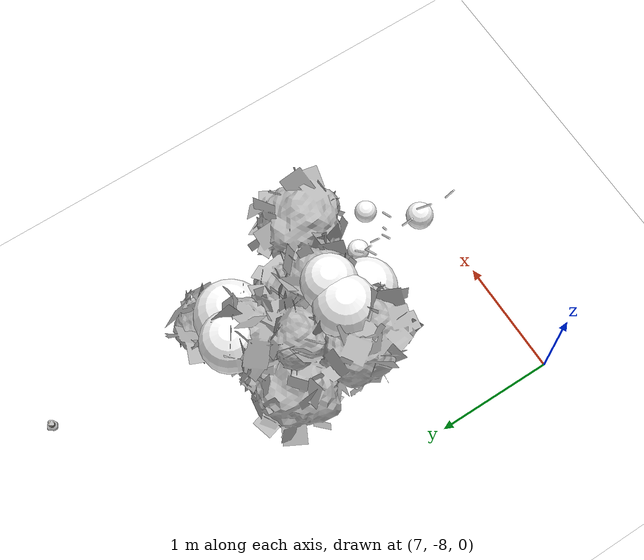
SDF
<sdf version="1.11">
 <world name="peach_orchard">
  <model name="ground">
   <static>true</static>
   <link name="link">
    <visual name="soil">
     <geometry><plane><normal>0 0 1</normal><size>32 22</size></plane></geometry>
     <material>
      <ambient>1 1 1 1</ambient>
      <diffuse>1 1 1 1</diffuse>
      <specular>0.1 0.1 0.1 1</specular>
      <pbr>
       <metal>
        <albedo_map>textures/soil_albedo.png</albedo_map>
        <normal_map type="tangent">textures/soil_normal.png</normal_map>
        <roughness>0.95</roughness>
        <metalness>0</metalness>
       </metal>
      </pbr>
     </material>
    </visual>
    <collision name="c_soil">
     <geometry><plane><normal>0 0 1</normal><size>32 22</size></plane></geometry>
    </collision>
   </link>
  </model>
  <model name="tree_r4_t0">
   <pose>8 -6.6 0 0 0 0</pose>
   <static>true</static>
   <link name="link">
    <visual name="tree_mesh">
     <pose>0 0 0 0 0 0.129066</pose>
     <geometry>
      <mesh><uri>model://peach_sim/meshes/peach_tree_a.glb</uri><scale>1.04317 1.04317 1.04317</scale></mesh>
     </geometry>
    </visual>
    <visual name="trunk_0">
     <pose>0 0 0.160191 0 0 0</pose>
     <geometry><cylinder><radius>0.056174</radius><length>0.320383</length></cylinder></geometry>
     <material>
      <ambient>1 1 1 1</ambient>
      <diffuse>1 1 1 1</diffuse>
      <specular>0.1 0.1 0.1 1</specular>
      <pbr>
       <metal>
        <albedo_map>textures/bark_albedo.png</albedo_map>
        <normal_map type="tangent">textures/bark_normal.png</normal_map>
        <roughness>0.9</roughness>
        <metalness>0</metalness>
       </metal>
      </pbr>
     </material>
    </visual>
    <collision name="c_trunk_0">
     <pose>0 0 0.160191 0 0 0</pose>
     <geometry><cylinder><radius>0.056174</radius><length>0.320383</length></cylinder></geometry>
    </collision>
    <visual name="trunk_1">
     <pose>0 0 0.451449 0 0 0</pose>
     <geometry><cylinder><radius>0.0404453</radius><length>0.262132</length></cylinder></geometry>
     <material>
      <ambient>1 1 1 1</ambient>
      <diffuse>1 1 1 1</diffuse>
      <specular>0.1 0.1 0.1 1</specular>
      <pbr>
       <metal>
        <albedo_map>textures/bark_albedo.png</albedo_map>
        <normal_map type="tangent">textures/bark_normal.png</normal_map>
        <roughness>0.9</roughness>
        <metalness>0</metalness>
       </metal>
      </pbr>
     </material>
    </visual>
    <collision name="c_trunk_1">
     <pose>0 0 0.451449 0 0 0</pose>
     <geometry><cylinder><radius>0.0404453</radius><length>0.262132</length></cylinder></geometry>
    </collision>
    <visual name="root_flare">
     <pose>0 0 0.035 0 0 0</pose>
     <geometry><cylinder><radius>0.0814523</radius><length>0.07</length></cylinder></geometry>
     <material>
      <ambient>1 1 1 1</ambient>
      <diffuse>1 1 1 1</diffuse>
      <specular>0.1 0.1 0.1 1</specular>
      <pbr>
       <metal>
        <albedo_map>textures/bark_albedo.png</albedo_map>
        <normal_map type="tangent">textures/bark_normal.png</normal_map>
        <roughness>0.95</roughness>
        <metalness>0</metalness>
       </metal>
      </pbr>
     </material>
    </visual>
    <visual name="scaffold_0">
     <pose>-0.11892 0.309211 0.842624 0 0.823906 1.93795</pose>
     <geometry><cylinder><radius>0.022</radius><length>0.902938</length></cylinder></geometry>
     <material>
      <ambient>1 1 1 1</ambient>
      <diffuse>1 1 1 1</diffuse>
      <specular>0.1 0.1 0.1 1</specular>
      <pbr>
       <metal>
        <albedo_map>textures/bark_albedo.png</albedo_map>
        <normal_map type="tangent">textures/bark_normal.png</normal_map>
        <roughness>0.9</roughness>
        <metalness>0</metalness>
       </metal>
      </pbr>
     </material>
    </visual>
    <collision name="c_scaffold_0">
     <pose>-0.11892 0.309211 0.842624 0 0.823906 1.93795</pose>
     <geometry><cylinder><radius>0.022</radius><length>0.902938</length></cylinder></geometry>
    </collision>
    <visual name="branchlet_0_0">
     <pose>-0.240636 0.437802 1.12912 0 0.696109 -2.21086</pose>
     <geometry><cylinder><radius>0.012</radius><length>0.248842</length></cylinder></geometry>
     <material>
      <ambient>1 1 1 1</ambient>
      <diffuse>1 1 1 1</diffuse>
      <specular>0.1 0.1 0.1 1</specular>
      <pbr>
       <metal>
        <albedo_map>textures/bark_albedo.png</albedo_map>
        <normal_map type="tangent">textures/bark_normal.png</normal_map>
        <roughness>0.9</roughness>
        <metalness>0</metalness>
       </metal>
      </pbr>
     </material>
    </visual>
    <visual name="branchlet_0_1">
     <pose>-0.102066 0.313433 0.935337 0 0.187561 0.862831</pose>
     <geometry><cylinder><radius>0.012</radius><length>0.210288</length></cylinder></geometry>
     <material>
      <ambient>1 1 1 1</ambient>
      <diffuse>1 1 1 1</diffuse>
      <specular>0.1 0.1 0.1 1</specular>
      <pbr>
       <metal>
        <albedo_map>textures/bark_albedo.png</albedo_map>
        <normal_map type="tangent">textures/bark_normal.png</normal_map>
        <roughness>0.9</roughness>
        <metalness>0</metalness>
       </metal>
      </pbr>
     </material>
    </visual>
    <visual name="branchlet_0_2">
     <pose>-0.339567 0.417087 1.00311 0 1.63695 -2.74199</pose>
     <geometry><cylinder><radius>0.012</radius><length>0.335347</length></cylinder></geometry>
     <material>
      <ambient>1 1 1 1</ambient>
      <diffuse>1 1 1 1</diffuse>
      <specular>0.1 0.1 0.1 1</specular>
      <pbr>
       <metal>
        <albedo_map>textures/bark_albedo.png</albedo_map>
        <normal_map type="tangent">textures/bark_normal.png</normal_map>
        <roughness>0.9</roughness>
        <metalness>0</metalness>
       </metal>
      </pbr>
     </material>
    </visual>
    <visual name="scaffold_1">
     <pose>0.0461774 0.286291 0.715683 0 1.01586 1.41088</pose>
     <geometry><cylinder><radius>0.022</radius><length>0.682383</length></cylinder></geometry>
     <material>
      <ambient>1 1 1 1</ambient>
      <diffuse>1 1 1 1</diffuse>
      <specular>0.1 0.1 0.1 1</specular>
      <pbr>
       <metal>
        <albedo_map>textures/bark_albedo.png</albedo_map>
        <normal_map type="tangent">textures/bark_normal.png</normal_map>
        <roughness>0.9</roughness>
        <metalness>0</metalness>
       </metal>
      </pbr>
     </material>
    </visual>
    <collision name="c_scaffold_1">
     <pose>0.0461774 0.286291 0.715683 0 1.01586 1.41088</pose>
     <geometry><cylinder><radius>0.022</radius><length>0.682383</length></cylinder></geometry>
    </collision>
    <visual name="branchlet_1_0">
     <pose>-0.0266793 0.410322 0.671862 0 2.44921 2.94769</pose>
     <geometry><cylinder><radius>0.012</radius><length>0.287388</length></cylinder></geometry>
     <material>
      <ambient>1 1 1 1</ambient>
      <diffuse>1 1 1 1</diffuse>
      <specular>0.1 0.1 0.1 1</specular>
      <pbr>
       <metal>
        <albedo_map>textures/bark_albedo.png</albedo_map>
        <normal_map type="tangent">textures/bark_normal.png</normal_map>
        <roughness>0.9</roughness>
        <metalness>0</metalness>
       </metal>
      </pbr>
     </material>
    </visual>
    <visual name="branchlet_1_1">
     <pose>0.0699533 0.231267 0.851932 0 0.378228 -1.11061</pose>
     <geometry><cylinder><radius>0.012</radius><length>0.30042</length></cylinder></geometry>
     <material>
      <ambient>1 1 1 1</ambient>
      <diffuse>1 1 1 1</diffuse>
      <specular>0.1 0.1 0.1 1</specular>
      <pbr>
       <metal>
        <albedo_map>textures/bark_albedo.png</albedo_map>
        <normal_map type="tangent">textures/bark_normal.png</normal_map>
        <roughness>0.9</roughness>
        <metalness>0</metalness>
       </metal>
      </pbr>
     </material>
    </visual>
    <visual name="scaffold_2">
     <pose>-0.252259 0.142261 0.750839 0 0.932354 2.6281</pose>
     <geometry><cylinder><radius>0.022</radius><length>0.721294</length></cylinder></geometry>
     <material>
      <ambient>1 1 1 1</ambient>
      <diffuse>1 1 1 1</diffuse>
      <specular>0.1 0.1 0.1 1</specular>
      <pbr>
       <metal>
        <albedo_map>textures/bark_albedo.png</albedo_map>
        <normal_map type="tangent">textures/bark_normal.png</normal_map>
        <roughness>0.9</roughness>
        <metalness>0</metalness>
       </metal>
      </pbr>
     </material>
    </visual>
    <collision name="c_scaffold_2">
     <pose>-0.252259 0.142261 0.750839 0 0.932354 2.6281</pose>
     <geometry><cylinder><radius>0.022</radius><length>0.721294</length></cylinder></geometry>
    </collision>
    <visual name="branchlet_2_0">
     <pose>-0.450095 0.346261 0.815523 0 1.76808 2.11086</pose>
     <geometry><cylinder><radius>0.012</radius><length>0.332073</length></cylinder></geometry>
     <material>
      <ambient>1 1 1 1</ambient>
      <diffuse>1 1 1 1</diffuse>
      <specular>0.1 0.1 0.1 1</specular>
      <pbr>
       <metal>
        <albedo_map>textures/bark_albedo.png</albedo_map>
        <normal_map type="tangent">textures/bark_normal.png</normal_map>
        <roughness>0.9</roughness>
        <metalness>0</metalness>
       </metal>
      </pbr>
     </material>
    </visual>
    <visual name="branchlet_2_1">
     <pose>-0.507176 0.323187 1.0404 0 0.633958 2.25024</pose>
     <geometry><cylinder><radius>0.012</radius><length>0.296271</length></cylinder></geometry>
     <material>
      <ambient>1 1 1 1</ambient>
      <diffuse>1 1 1 1</diffuse>
      <specular>0.1 0.1 0.1 1</specular>
      <pbr>
       <metal>
        <albedo_map>textures/bark_albedo.png</albedo_map>
        <normal_map type="tangent">textures/bark_normal.png</normal_map>
        <roughness>0.9</roughness>
        <metalness>0</metalness>
       </metal>
      </pbr>
     </material>
    </visual>
    <visual name="branchlet_2_2">
     <pose>-0.427683 0.152308 0.798017 0 1.63278 -2.91382</pose>
     <geometry><cylinder><radius>0.012</radius><length>0.229762</length></cylinder></geometry>
     <material>
      <ambient>1 1 1 1</ambient>
      <diffuse>1 1 1 1</diffuse>
      <specular>0.1 0.1 0.1 1</specular>
      <pbr>
       <metal>
        <albedo_map>textures/bark_albedo.png</albedo_map>
        <normal_map type="tangent">textures/bark_normal.png</normal_map>
        <roughness>0.9</roughness>
        <metalness>0</metalness>
       </metal>
      </pbr>
     </material>
    </visual>
    <visual name="canopy_0">
     <pose>-0.353165 0.180144 2.13926 0 0 0</pose>
     <geometry><sphere><radius>0.219993</radius></sphere></geometry>
     <material>
      <ambient>1 1 1 1</ambient>
      <diffuse>1 1 1 1</diffuse>
      <specular>0.1 0.1 0.1 1</specular>
      <pbr>
       <metal>
        <albedo_map>textures/leaf_albedo.png</albedo_map>
        <normal_map type="tangent">textures/leaf_normal.png</normal_map>
        <roughness>0.85</roughness>
        <metalness>0</metalness>
       </metal>
      </pbr>
     </material>
    </visual>
    <collision name="c_canopy_0">
     <pose>-0.353165 0.180144 2.13926 0 0 0</pose>
     <geometry><sphere><radius>0.219993</radius></sphere></geometry>
    </collision>
    <visual name="canopy_1">
     <pose>-0.113515 0.298532 1.64903 0 0 0</pose>
     <geometry><sphere><radius>0.253715</radius></sphere></geometry>
     <material>
      <ambient>1 1 1 1</ambient>
      <diffuse>1 1 1 1</diffuse>
      <specular>0.1 0.1 0.1 1</specular>
      <pbr>
       <metal>
        <albedo_map>textures/leaf_albedo.png</albedo_map>
        <normal_map type="tangent">textures/leaf_normal.png</normal_map>
        <roughness>0.85</roughness>
        <metalness>0</metalness>
       </metal>
      </pbr>
     </material>
    </visual>
    <collision name="c_canopy_1">
     <pose>-0.113515 0.298532 1.64903 0 0 0</pose>
     <geometry><sphere><radius>0.253715</radius></sphere></geometry>
    </collision>
    <visual name="canopy_2">
     <pose>-0.413058 0.140911 1.89591 0 0 0</pose>
     <geometry><sphere><radius>0.206685</radius></sphere></geometry>
     <material>
      <ambient>1 1 1 1</ambient>
      <diffuse>1 1 1 1</diffuse>
      <specular>0.1 0.1 0.1 1</specular>
      <pbr>
       <metal>
        <albedo_map>textures/leaf_albedo.png</albedo_map>
        <normal_map type="tangent">textures/leaf_normal.png</normal_map>
        <roughness>0.85</roughness>
        <metalness>0</metalness>
       </metal>
      </pbr>
     </material>
    </visual>
    <collision name="c_canopy_2">
     <pose>-0.413058 0.140911 1.89591 0 0 0</pose>
     <geometry><sphere><radius>0.206685</radius></sphere></geometry>
    </collision>
    <visual name="canopy_3">
     <pose>0.127958 0.786649 1.77046 0 0 0</pose>
     <geometry><sphere><radius>0.258433</radius></sphere></geometry>
     <material>
      <ambient>1 1 1 1</ambient>
      <diffuse>1 1 1 1</diffuse>
      <specular>0.1 0.1 0.1 1</specular>
      <pbr>
       <metal>
        <albedo_map>textures/leaf_albedo.png</albedo_map>
        <normal_map type="tangent">textures/leaf_normal.png</normal_map>
        <roughness>0.85</roughness>
        <metalness>0</metalness>
       </metal>
      </pbr>
     </material>
    </visual>
    <visual name="canopy_4">
     <pose>-0.157652 0.176974 2.14882 0 0 0</pose>
     <geometry><sphere><radius>0.19476</radius></sphere></geometry>
     <material>
      <ambient>1 1 1 1</ambient>
      <diffuse>1 1 1 1</diffuse>
      <specular>0.1 0.1 0.1 1</specular>
      <pbr>
       <metal>
        <albedo_map>textures/leaf_albedo.png</albedo_map>
        <normal_map type="tangent">textures/leaf_normal.png</normal_map>
        <roughness>0.85</roughness>
        <metalness>0</metalness>
       </metal>
      </pbr>
     </material>
    </visual>
    <visual name="canopy_5">
     <pose>-0.211441 -0.0932947 1.78726 0 0 0</pose>
     <geometry><sphere><radius>0.221749</radius></sphere></geometry>
     <material>
      <ambient>1 1 1 1</ambient>
      <diffuse>1 1 1 1</diffuse>
      <specular>0.1 0.1 0.1 1</specular>
      <pbr>
       <metal>
        <albedo_map>textures/leaf_albedo.png</albedo_map>
        <normal_map type="tangent">textures/leaf_normal.png</normal_map>
        <roughness>0.85</roughness>
        <metalness>0</metalness>
       </metal>
      </pbr>
     </material>
    </visual>
    <visual name="canopy_6">
     <pose>-0.0890042 0.907197 1.94922 0 0 0</pose>
     <geometry><sphere><radius>0.215783</radius></sphere></geometry>
     <material>
      <ambient>1 1 1 1</ambient>
      <diffuse>1 1 1 1</diffuse>
      <specular>0.1 0.1 0.1 1</specular>
      <pbr>
       <metal>
        <albedo_map>textures/leaf_albedo.png</albedo_map>
        <normal_map type="tangent">textures/leaf_normal.png</normal_map>
        <roughness>0.85</roughness>
        <metalness>0</metalness>
       </metal>
      </pbr>
     </material>
    </visual>
    <visual name="canopy_7">
     <pose>0.118046 0.815409 1.67159 0 0 0</pose>
     <geometry><sphere><radius>0.200999</radius></sphere></geometry>
     <material>
      <ambient>1 1 1 1</ambient>
      <diffuse>1 1 1 1</diffuse>
      <specular>0.1 0.1 0.1 1</specular>
      <pbr>
       <metal>
        <albedo_map>textures/leaf_albedo.png</albedo_map>
        <normal_map type="tangent">textures/leaf_normal.png</normal_map>
        <roughness>0.85</roughness>
        <metalness>0</metalness>
       </metal>
      </pbr>
     </material>
    </visual>
    <visual name="canopy_8">
     <pose>-0.397458 0.062704 1.81689 0 0 0</pose>
     <geometry><sphere><radius>0.243974</radius></sphere></geometry>
     <material>
      <ambient>1 1 1 1</ambient>
      <diffuse>1 1 1 1</diffuse>
      <specular>0.1 0.1 0.1 1</specular>
      <pbr>
       <metal>
        <albedo_map>textures/leaf_albedo.png</albedo_map>
        <normal_map type="tangent">textures/leaf_normal.png</normal_map>
        <roughness>0.85</roughness>
        <metalness>0</metalness>
       </metal>
      </pbr>
     </material>
    </visual>
    <visual name="foliage_0">
     <pose>0.237877 -0.348395 1.27142 0 0 0</pose>
     <geometry><sphere><radius>0.0810173</radius></sphere></geometry>
     <material>
      <ambient>1 1 1 1</ambient>
      <diffuse>1 1 1 1</diffuse>
      <specular>0.1 0.1 0.1 1</specular>
      <pbr>
       <metal>
        <albedo_map>textures/leaf_albedo.png</albedo_map>
        <normal_map type="tangent">textures/leaf_normal.png</normal_map>
        <roughness>0.85</roughness>
        <metalness>0</metalness>
       </metal>
      </pbr>
     </material>
    </visual>
    <visual name="foliage_4">
     <pose>0.464609 -0.564911 1.2866 0 0 0</pose>
     <geometry><sphere><radius>0.0825177</radius></sphere></geometry>
     <material>
      <ambient>1 1 1 1</ambient>
      <diffuse>1 1 1 1</diffuse>
      <specular>0.1 0.1 0.1 1</specular>
      <pbr>
       <metal>
        <albedo_map>textures/leaf_albedo.png</albedo_map>
        <normal_map type="tangent">textures/leaf_normal.png</normal_map>
        <roughness>0.85</roughness>
        <metalness>0</metalness>
       </metal>
      </pbr>
     </material>
    </visual>
    <visual name="foliage_8">
     <pose>0.229121 -0.893477 1.25439 0 0 0</pose>
     <geometry><sphere><radius>0.103102</radius></sphere></geometry>
     <material>
      <ambient>1 1 1 1</ambient>
      <diffuse>1 1 1 1</diffuse>
      <specular>0.1 0.1 0.1 1</specular>
      <pbr>
       <metal>
        <albedo_map>textures/leaf_albedo.png</albedo_map>
        <normal_map type="tangent">textures/leaf_normal.png</normal_map>
        <roughness>0.85</roughness>
        <metalness>0</metalness>
       </metal>
      </pbr>
     </material>
    </visual>
    <visual name="twig_0">
     <pose>0.179799 -0.315712 1.40249 0 0.730369 -2.86632</pose>
     <geometry><cylinder><radius>0.007</radius><length>0.117124</length></cylinder></geometry>
     <material>
      <ambient>1 1 1 1</ambient>
      <diffuse>1 1 1 1</diffuse>
      <specular>0.1 0.1 0.1 1</specular>
      <pbr>
       <metal>
        <albedo_map>textures/bark_albedo.png</albedo_map>
        <normal_map type="tangent">textures/bark_normal.png</normal_map>
        <roughness>0.9</roughness>
        <metalness>0</metalness>
       </metal>
      </pbr>
     </material>
    </visual>
    <visual name="twig_1">
     <pose>0.177577 -0.389574 1.37781 0 0.356242 -2.5424</pose>
     <geometry><cylinder><radius>0.007</radius><length>0.118179</length></cylinder></geometry>
     <material>
      <ambient>1 1 1 1</ambient>
      <diffuse>1 1 1 1</diffuse>
      <specular>0.1 0.1 0.1 1</specular>
      <pbr>
       <metal>
        <albedo_map>textures/bark_albedo.png</albedo_map>
        <normal_map type="tangent">textures/bark_normal.png</normal_map>
        <roughness>0.9</roughness>
        <metalness>0</metalness>
       </metal>
      </pbr>
     </material>
    </visual>
    <visual name="twig_2">
     <pose>0.198315 -0.461977 1.38392 0 0.512741 -2.42476</pose>
     <geometry><cylinder><radius>0.007</radius><length>0.112559</length></cylinder></geometry>
     <material>
      <ambient>1 1 1 1</ambient>
      <diffuse>1 1 1 1</diffuse>
      <specular>0.1 0.1 0.1 1</specular>
      <pbr>
       <metal>
        <albedo_map>textures/bark_albedo.png</albedo_map>
        <normal_map type="tangent">textures/bark_normal.png</normal_map>
        <roughness>0.9</roughness>
        <metalness>0</metalness>
       </metal>
      </pbr>
     </material>
    </visual>
    <visual name="twig_3">
     <pose>0.235712 -0.574542 1.38906 0 0.60057 2.80097</pose>
     <geometry><cylinder><radius>0.007</radius><length>0.105718</length></cylinder></geometry>
     <material>
      <ambient>1 1 1 1</ambient>
      <diffuse>1 1 1 1</diffuse>
      <specular>0.1 0.1 0.1 1</specular>
      <pbr>
       <metal>
        <albedo_map>textures/bark_albedo.png</albedo_map>
        <normal_map type="tangent">textures/bark_normal.png</normal_map>
        <roughness>0.9</roughness>
        <metalness>0</metalness>
       </metal>
      </pbr>
     </material>
    </visual>
    <visual name="twig_4">
     <pose>0.305249 -0.637141 1.42926 0 0.643536 2.9256</pose>
     <geometry><cylinder><radius>0.007</radius><length>0.206937</length></cylinder></geometry>
     <material>
      <ambient>1 1 1 1</ambient>
      <diffuse>1 1 1 1</diffuse>
      <specular>0.1 0.1 0.1 1</specular>
      <pbr>
       <metal>
        <albedo_map>textures/bark_albedo.png</albedo_map>
        <normal_map type="tangent">textures/bark_normal.png</normal_map>
        <roughness>0.9</roughness>
        <metalness>0</metalness>
       </metal>
      </pbr>
     </material>
    </visual>
    <visual name="twig_5">
     <pose>0.121996 -0.377885 1.4208 0 0.71828 3.11426</pose>
     <geometry><cylinder><radius>0.007</radius><length>0.171119</length></cylinder></geometry>
     <material>
      <ambient>1 1 1 1</ambient>
      <diffuse>1 1 1 1</diffuse>
      <specular>0.1 0.1 0.1 1</specular>
      <pbr>
       <metal>
        <albedo_map>textures/bark_albedo.png</albedo_map>
        <normal_map type="tangent">textures/bark_normal.png</normal_map>
        <roughness>0.9</roughness>
        <metalness>0</metalness>
       </metal>
      </pbr>
     </material>
    </visual>
    <visual name="twig_6">
     <pose>0.167668 -0.537551 1.41902 0 0.618748 2.96842</pose>
     <geometry><cylinder><radius>0.007</radius><length>0.182918</length></cylinder></geometry>
     <material>
      <ambient>1 1 1 1</ambient>
      <diffuse>1 1 1 1</diffuse>
      <specular>0.1 0.1 0.1 1</specular>
      <pbr>
       <metal>
        <albedo_map>textures/bark_albedo.png</albedo_map>
        <normal_map type="tangent">textures/bark_normal.png</normal_map>
        <roughness>0.9</roughness>
        <metalness>0</metalness>
       </metal>
      </pbr>
     </material>
    </visual>
    <visual name="twig_7">
     <pose>0.17061 -0.728582 1.43682 0 0.328023 -2.84277</pose>
     <geometry><cylinder><radius>0.007</radius><length>0.217128</length></cylinder></geometry>
     <material>
      <ambient>1 1 1 1</ambient>
      <diffuse>1 1 1 1</diffuse>
      <specular>0.1 0.1 0.1 1</specular>
      <pbr>
       <metal>
        <albedo_map>textures/bark_albedo.png</albedo_map>
        <normal_map type="tangent">textures/bark_normal.png</normal_map>
        <roughness>0.9</roughness>
        <metalness>0</metalness>
       </metal>
      </pbr>
     </material>
    </visual>
    <visual name="twig_8">
     <pose>0.21389 -0.902437 1.42112 0 0.557839 -2.53455</pose>
     <geometry><cylinder><radius>0.007</radius><length>0.188701</length></cylinder></geometry>
     <material>
      <ambient>1 1 1 1</ambient>
      <diffuse>1 1 1 1</diffuse>
      <specular>0.1 0.1 0.1 1</specular>
      <pbr>
       <metal>
        <albedo_map>textures/bark_albedo.png</albedo_map>
        <normal_map type="tangent">textures/bark_normal.png</normal_map>
        <roughness>0.9</roughness>
        <metalness>0</metalness>
       </metal>
      </pbr>
     </material>
    </visual>
    <visual name="twig_9">
     <pose>0.198816 -1.12817 1.40765 0 0.305699 -2.48022</pose>
     <geometry><cylinder><radius>0.007</radius><length>0.153911</length></cylinder></geometry>
     <material>
      <ambient>1 1 1 1</ambient>
      <diffuse>1 1 1 1</diffuse>
      <specular>0.1 0.1 0.1 1</specular>
      <pbr>
       <metal>
        <albedo_map>textures/bark_albedo.png</albedo_map>
        <normal_map type="tangent">textures/bark_normal.png</normal_map>
        <roughness>0.9</roughness>
        <metalness>0</metalness>
       </metal>
      </pbr>
     </material>
    </visual>
   </link>
  </model>
  <model name="peach_tree_r4_t1_04">
   <pose>8.22 -4.41628 1.45 0 0.101749 -2.26093</pose>
   <static>true</static>
   <link name="bag">
    <visual name="bag_mesh">
     <pose>0 0 0.0412517 0 0 -0</pose>
     <geometry>
      <mesh><uri>model://peach_sim/meshes/bagged_peach.glb</uri><scale>0.966095 1.04541 0.937538</scale></mesh>
     </geometry>
    </visual>
    <visual name="body">
     <pose>0 0 0.0232517 0 0 0</pose>
     <geometry><ellipsoid><radii>0.0362286 0.0271808 0.0251118</radii></ellipsoid></geometry>
     <material>
      <ambient>1 1 1 1</ambient>
      <diffuse>1 1 1 1</diffuse>
      <specular>0.1 0.1 0.1 1</specular>
      <pbr>
       <metal>
        <albedo_map>textures/paper_bag_albedo.png</albedo_map>
        <normal_map type="tangent">textures/paper_bag_normal.png</normal_map>
        <roughness>0.72</roughness>
        <metalness>0</metalness>
       </metal>
      </pbr>
     </material>
    </visual>
    <visual name="bottom_fold">
     <pose>0 0 0.012 0 0 0.35</pose>
     <geometry><box><size>0.0561543 0.0312579 0.022</size></box></geometry>
     <material>
      <ambient>1 1 1 1</ambient>
      <diffuse>1 1 1 1</diffuse>
      <specular>0.1 0.1 0.1 1</specular>
      <pbr>
       <metal>
        <albedo_map>textures/paper_bag_albedo.png</albedo_map>
        <normal_map type="tangent">textures/paper_bag_normal.png</normal_map>
        <roughness>0.8</roughness>
        <metalness>0</metalness>
       </metal>
      </pbr>
     </material>
    </visual>
    <visual name="fruit">
     <pose>0 0 0.0205081 0 0 0</pose>
     <geometry><sphere><radius>0.0275684</radius></sphere></geometry>
     <material>
      <ambient>1 1 1 1</ambient>
      <diffuse>1 1 1 1</diffuse>
      <specular>0.1 0.1 0.1 1</specular>
      <pbr>
       <metal>
        <albedo_map>textures/fruit_skin_albedo.png</albedo_map>
        <normal_map type="tangent">textures/fruit_skin_normal.png</normal_map>
        <roughness>0.55</roughness>
        <metalness>0</metalness>
       </metal>
      </pbr>
     </material>
    </visual>
    <visual name="neck">
     <pose>0 0 0.0555034 0 0 0</pose>
     <geometry><cylinder><radius>0.013</radius><length>0.018</length></cylinder></geometry>
     <material>
      <ambient>1 1 1 1</ambient>
      <diffuse>1 1 1 1</diffuse>
      <specular>0.1 0.1 0.1 1</specular>
      <pbr>
       <metal>
        <albedo_map>textures/paper_bag_albedo.png</albedo_map>
        <normal_map type="tangent">textures/paper_bag_normal.png</normal_map>
        <roughness>0.75</roughness>
        <metalness>0</metalness>
       </metal>
      </pbr>
     </material>
    </visual>
    <visual name="gather">
     <pose>0 0 0.0365034 0 0 0</pose>
     <geometry><cylinder><radius>0.019</radius><length>0.02</length></cylinder></geometry>
     <material>
      <ambient>1 1 1 1</ambient>
      <diffuse>1 1 1 1</diffuse>
      <specular>0.1 0.1 0.1 1</specular>
      <pbr>
       <metal>
        <albedo_map>textures/paper_bag_albedo.png</albedo_map>
        <normal_map type="tangent">textures/paper_bag_normal.png</normal_map>
        <roughness>0.8</roughness>
        <metalness>0</metalness>
       </metal>
      </pbr>
     </material>
    </visual>
    <visual name="inner_paper">
     <pose>0 0 0.0605034 0 0 0</pose>
     <geometry><cylinder><radius>0.01</radius><length>0.008</length></cylinder></geometry>
     <material>
      <ambient>0.180392 0.14902 0.133333 1</ambient>
      <diffuse>0.180392 0.14902 0.133333 1</diffuse>
      <specular>0.1 0.1 0.1 1</specular>
     </material>
    </visual>
    <visual name="wire_0">
     <pose>0 0 0.0505034 0 0 0</pose>
     <geometry><cylinder><radius>0.0205</radius><length>0.0035</length></cylinder></geometry>
     <material>
      <ambient>0.25 0.25 0.25 1</ambient>
      <diffuse>0.25 0.25 0.25 1</diffuse>
      <specular>0.1 0.1 0.1 1</specular>
     </material>
    </visual>
    <visual name="wire_1">
     <pose>0 0 0.0575034 0 0 0</pose>
     <geometry><cylinder><radius>0.0205</radius><length>0.0035</length></cylinder></geometry>
     <material>
      <ambient>0.25 0.25 0.25 1</ambient>
      <diffuse>0.25 0.25 0.25 1</diffuse>
      <specular>0.1 0.1 0.1 1</specular>
     </material>
    </visual>
    <visual name="wire_tail">
     <pose>0.01 0 0.0585034 0 0.521618 0</pose>
     <geometry><cylinder><radius>0.0012</radius><length>0.026</length></cylinder></geometry>
     <material>
      <ambient>0.25 0.25 0.25 1</ambient>
      <diffuse>0.25 0.25 0.25 1</diffuse>
      <specular>0.1 0.1 0.1 1</specular>
     </material>
    </visual>
    <collision name="c_body">
     <pose>0 0 0.0232517 0 0 0</pose>
     <geometry><cylinder><radius>0.0362286</radius><length>0.0465034</length></cylinder></geometry>
    </collision>
   </link>
  </model>
 </world>
</sdf>
